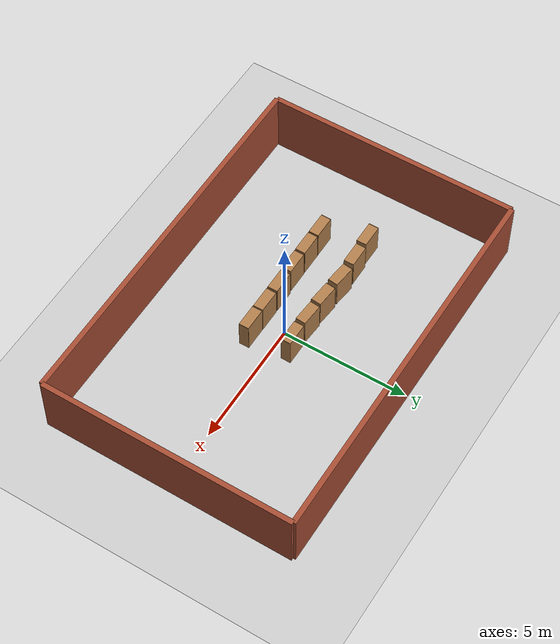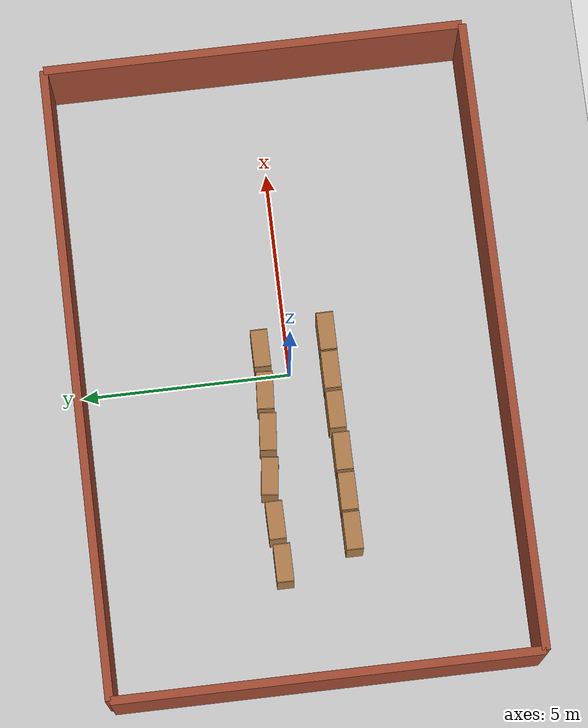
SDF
<sdf version="1.7">
 <world name="default">
  <light name="sun" type="directional">
   <pose>0 0 10 0 -0 0</pose>
   <diffuse>0.8 0.8 0.8 1</diffuse>
   <specular>0.2 0.2 0.2 1</specular>
   <attenuation>
    <range>1000</range>
    <constant>0.9</constant>
    <linear>0.01</linear>
    <quadratic>0.001</quadratic>
   </attenuation>
   <direction>-0.5 0.1 -0.9</direction>
   <spot><inner_angle>0</inner_angle><outer_angle>0</outer_angle><falloff>0</falloff></spot>
  </light>
  <model name="ground_plane">
   <static>1</static>
   <link name="link">
    <collision name="collision">
     <geometry><plane><normal>0 0 1</normal><size>100 100</size></plane></geometry>
     <surface><friction><ode><mu>100</mu><mu2>50</mu2></ode></friction></surface>
    </collision>
    <visual name="visual">
     <cast_shadows>0</cast_shadows>
     <geometry><plane><normal>0 0 1</normal><size>100 100</size></plane></geometry>
     <material>
      <script><uri>file://media/materials/scripts/gazebo.material</uri><name>Gazebo/Grey</name></script>
     </material>
    </visual>
   </link>
  </model>
  <model name="my_factory">
   <static>1</static>
   <link name="Wall_South">
    <pose>0 -5 0 0 -0 0</pose>
    <collision name="Wall_South_Collision">
     <geometry><box><size>15 0.2 2.5</size></box></geometry>
     <pose>0 0 1.25 0 -0 0</pose>
    </collision>
    <visual name="Wall_South_Visual">
     <geometry><box><size>15 0.2 2.5</size></box></geometry>
     <pose>0 0 1.25 0 -0 0</pose>
     <material>
      <script><uri>file://media/materials/scripts/gazebo.material</uri><name>Gazebo/Bricks</name></script>
     </material>
    </visual>
   </link>
   <link name="Wall_North">
    <pose>0 5 0 0 -0 0</pose>
    <collision name="Wall_North_Collision">
     <geometry><box><size>15 0.2 2.5</size></box></geometry>
     <pose>0 0 1.25 0 -0 0</pose>
    </collision>
    <visual name="Wall_North_Visual">
     <geometry><box><size>15 0.2 2.5</size></box></geometry>
     <pose>0 0 1.25 0 -0 0</pose>
     <material>
      <script><uri>file://media/materials/scripts/gazebo.material</uri><name>Gazebo/Bricks</name></script>
     </material>
    </visual>
   </link>
   <link name="Wall_West">
    <pose>-7.5 0 0 0 -0 1.5708</pose>
    <collision name="Wall_West_Collision">
     <geometry><box><size>10 0.2 2.5</size></box></geometry>
     <pose>0 0 1.25 0 -0 0</pose>
    </collision>
    <visual name="Wall_West_Visual">
     <geometry><box><size>10 0.2 2.5</size></box></geometry>
     <pose>0 0 1.25 0 -0 0</pose>
     <material>
      <script><uri>file://media/materials/scripts/gazebo.material</uri><name>Gazebo/Bricks</name></script>
     </material>
    </visual>
   </link>
   <link name="Wall_East">
    <pose>7.5 0 0 0 -0 1.5708</pose>
    <collision name="Wall_East_Collision">
     <geometry><box><size>10 0.2 2.5</size></box></geometry>
     <pose>0 0 1.25 0 -0 0</pose>
    </collision>
    <visual name="Wall_East_Visual">
     <geometry><box><size>10 0.2 2.5</size></box></geometry>
     <pose>0 0 1.25 0 -0 0</pose>
     <material>
      <script><uri>file://media/materials/scripts/gazebo.material</uri><name>Gazebo/Bricks</name></script>
     </material>
    </visual>
   </link>
  </model>
  <physics type="ode">
   <real_time_update_rate>1000</real_time_update_rate>
   <max_step_size>0.001</max_step_size>
   <real_time_factor>1</real_time_factor>
  </physics>
  <gravity>0 0 -9.8</gravity>
  <magnetic_field>6e-06 2.3e-05 -4.2e-05</magnetic_field>
  <atmosphere type="adiabatic"/>
  <scene><ambient>0.4 0.4 0.4 1</ambient><background>0.7 0.7 0.7 1</background><shadows>1</shadows></scene>
  <audio><device>default</device></audio>
  <spherical_coordinates>
   <surface_model>EARTH_WGS84</surface_model>
   <latitude_deg>0</latitude_deg>
   <longitude_deg>0</longitude_deg>
   <elevation>0</elevation>
   <heading_deg>0</heading_deg>
  </spherical_coordinates>
  <model name="bookshelf">
   <static>1</static>
   <link name="link">
    <inertial><mass>1</mass></inertial>
    <collision name="back">
     <pose>0 0.005 0.6 0 -0 0</pose>
     <geometry><box><size>0.9 0.01 1.2</size></box></geometry>
    </collision>
    <visual name="visual1">
     <pose>0 0.005 0.6 0 -0 0</pose>
     <geometry><box><size>0.9 0.01 1.2</size></box></geometry>
     <material>
      <script><uri>file://media/materials/scripts/gazebo.material</uri><name>Gazebo/Wood</name></script>
     </material>
    </visual>
    <collision name="left_side">
     <pose>0.45 -0.195 0.6 0 -0 0</pose>
     <geometry><box><size>0.02 0.4 1.2</size></box></geometry>
    </collision>
    <visual name="visual2">
     <pose>0.45 -0.195 0.6 0 -0 0</pose>
     <geometry><box><size>0.02 0.4 1.2</size></box></geometry>
     <material>
      <script><uri>file://media/materials/scripts/gazebo.material</uri><name>Gazebo/Wood</name></script>
     </material>
    </visual>
    <collision name="right_side">
     <pose>-0.45 -0.195 0.6 0 -0 0</pose>
     <geometry><box><size>0.02 0.4 1.2</size></box></geometry>
    </collision>
    <visual name="visual3">
     <pose>-0.45 -0.195 0.6 0 -0 0</pose>
     <geometry><box><size>0.02 0.4 1.2</size></box></geometry>
     <material>
      <script><uri>file://media/materials/scripts/gazebo.material</uri><name>Gazebo/Wood</name></script>
     </material>
    </visual>
    <collision name="bottom">
     <pose>0 -0.195 0.03 0 -0 0</pose>
     <geometry><box><size>0.88 0.4 0.06</size></box></geometry>
    </collision>
    <visual name="visual4">
     <pose>0 -0.195 0.03 0 -0 0</pose>
     <geometry><box><size>0.88 0.4 0.06</size></box></geometry>
     <material>
      <script><uri>file://media/materials/scripts/gazebo.material</uri><name>Gazebo/Wood</name></script>
     </material>
    </visual>
    <collision name="top">
     <pose>0 -0.195 1.19 0 -0 0</pose>
     <geometry><box><size>0.88 0.4 0.02</size></box></geometry>
    </collision>
    <visual name="visual5">
     <pose>0 -0.195 1.19 0 -0 0</pose>
     <geometry><box><size>0.88 0.4 0.02</size></box></geometry>
     <material>
      <script><uri>file://media/materials/scripts/gazebo.material</uri><name>Gazebo/Wood</name></script>
     </material>
    </visual>
    <collision name="low_shelf">
     <pose>0 -0.195 0.43 0 -0 0</pose>
     <geometry><box><size>0.88 0.4 0.02</size></box></geometry>
    </collision>
    <visual name="visual6">
     <pose>0 -0.195 0.43 0 -0 0</pose>
     <geometry><box><size>0.88 0.4 0.02</size></box></geometry>
     <material>
      <script><uri>file://media/materials/scripts/gazebo.material</uri><name>Gazebo/Wood</name></script>
     </material>
    </visual>
    <collision name="high_shelf">
     <pose>0 -0.195 0.8 0 -0 0</pose>
     <geometry><box><size>0.88 0.4 0.02</size></box></geometry>
    </collision>
    <visual name="visual7">
     <pose>0 -0.195 0.8 0 -0 0</pose>
     <geometry><box><size>0.88 0.4 0.02</size></box></geometry>
     <material>
      <script><uri>file://media/materials/scripts/gazebo.material</uri><name>Gazebo/Wood</name></script>
     </material>
    </visual>
   </link>
   <pose>-2.53982 0.964937 0 0 0 -0.11797</pose>
  </model>
  <model name="bookshelf_0">
   <static>1</static>
   <link name="link">
    <inertial><mass>1</mass></inertial>
    <collision name="back">
     <pose>0 0.005 0.6 0 -0 0</pose>
     <geometry><box><size>0.9 0.01 1.2</size></box></geometry>
    </collision>
    <visual name="visual1">
     <pose>0 0.005 0.6 0 -0 0</pose>
     <geometry><box><size>0.9 0.01 1.2</size></box></geometry>
     <material>
      <script><uri>file://media/materials/scripts/gazebo.material</uri><name>Gazebo/Wood</name></script>
     </material>
    </visual>
    <collision name="left_side">
     <pose>0.45 -0.195 0.6 0 -0 0</pose>
     <geometry><box><size>0.02 0.4 1.2</size></box></geometry>
    </collision>
    <visual name="visual2">
     <pose>0.45 -0.195 0.6 0 -0 0</pose>
     <geometry><box><size>0.02 0.4 1.2</size></box></geometry>
     <material>
      <script><uri>file://media/materials/scripts/gazebo.material</uri><name>Gazebo/Wood</name></script>
     </material>
    </visual>
    <collision name="right_side">
     <pose>-0.45 -0.195 0.6 0 -0 0</pose>
     <geometry><box><size>0.02 0.4 1.2</size></box></geometry>
    </collision>
    <visual name="visual3">
     <pose>-0.45 -0.195 0.6 0 -0 0</pose>
     <geometry><box><size>0.02 0.4 1.2</size></box></geometry>
     <material>
      <script><uri>file://media/materials/scripts/gazebo.material</uri><name>Gazebo/Wood</name></script>
     </material>
    </visual>
    <collision name="bottom">
     <pose>0 -0.195 0.03 0 -0 0</pose>
     <geometry><box><size>0.88 0.4 0.06</size></box></geometry>
    </collision>
    <visual name="visual4">
     <pose>0 -0.195 0.03 0 -0 0</pose>
     <geometry><box><size>0.88 0.4 0.06</size></box></geometry>
     <material>
      <script><uri>file://media/materials/scripts/gazebo.material</uri><name>Gazebo/Wood</name></script>
     </material>
    </visual>
    <collision name="top">
     <pose>0 -0.195 1.19 0 -0 0</pose>
     <geometry><box><size>0.88 0.4 0.02</size></box></geometry>
    </collision>
    <visual name="visual5">
     <pose>0 -0.195 1.19 0 -0 0</pose>
     <geometry><box><size>0.88 0.4 0.02</size></box></geometry>
     <material>
      <script><uri>file://media/materials/scripts/gazebo.material</uri><name>Gazebo/Wood</name></script>
     </material>
    </visual>
    <collision name="low_shelf">
     <pose>0 -0.195 0.43 0 -0 0</pose>
     <geometry><box><size>0.88 0.4 0.02</size></box></geometry>
    </collision>
    <visual name="visual6">
     <pose>0 -0.195 0.43 0 -0 0</pose>
     <geometry><box><size>0.88 0.4 0.02</size></box></geometry>
     <material>
      <script><uri>file://media/materials/scripts/gazebo.material</uri><name>Gazebo/Wood</name></script>
     </material>
    </visual>
    <collision name="high_shelf">
     <pose>0 -0.195 0.8 0 -0 0</pose>
     <geometry><box><size>0.88 0.4 0.02</size></box></geometry>
    </collision>
    <visual name="visual7">
     <pose>0 -0.195 0.8 0 -0 0</pose>
     <geometry><box><size>0.88 0.4 0.02</size></box></geometry>
     <material>
      <script><uri>file://media/materials/scripts/gazebo.material</uri><name>Gazebo/Wood</name></script>
     </material>
    </visual>
   </link>
   <pose>-0.498648 0.845447 0 0 0 -0.070534</pose>
  </model>
  <model name="bookshelf_1">
   <static>1</static>
   <link name="link">
    <inertial><mass>1</mass></inertial>
    <collision name="back">
     <pose>0 0.005 0.6 0 -0 0</pose>
     <geometry><box><size>0.9 0.01 1.2</size></box></geometry>
    </collision>
    <visual name="visual1">
     <pose>0 0.005 0.6 0 -0 0</pose>
     <geometry><box><size>0.9 0.01 1.2</size></box></geometry>
     <material>
      <script><uri>file://media/materials/scripts/gazebo.material</uri><name>Gazebo/Wood</name></script>
     </material>
    </visual>
    <collision name="left_side">
     <pose>0.45 -0.195 0.6 0 -0 0</pose>
     <geometry><box><size>0.02 0.4 1.2</size></box></geometry>
    </collision>
    <visual name="visual2">
     <pose>0.45 -0.195 0.6 0 -0 0</pose>
     <geometry><box><size>0.02 0.4 1.2</size></box></geometry>
     <material>
      <script><uri>file://media/materials/scripts/gazebo.material</uri><name>Gazebo/Wood</name></script>
     </material>
    </visual>
    <collision name="right_side">
     <pose>-0.45 -0.195 0.6 0 -0 0</pose>
     <geometry><box><size>0.02 0.4 1.2</size></box></geometry>
    </collision>
    <visual name="visual3">
     <pose>-0.45 -0.195 0.6 0 -0 0</pose>
     <geometry><box><size>0.02 0.4 1.2</size></box></geometry>
     <material>
      <script><uri>file://media/materials/scripts/gazebo.material</uri><name>Gazebo/Wood</name></script>
     </material>
    </visual>
    <collision name="bottom">
     <pose>0 -0.195 0.03 0 -0 0</pose>
     <geometry><box><size>0.88 0.4 0.06</size></box></geometry>
    </collision>
    <visual name="visual4">
     <pose>0 -0.195 0.03 0 -0 0</pose>
     <geometry><box><size>0.88 0.4 0.06</size></box></geometry>
     <material>
      <script><uri>file://media/materials/scripts/gazebo.material</uri><name>Gazebo/Wood</name></script>
     </material>
    </visual>
    <collision name="top">
     <pose>0 -0.195 1.19 0 -0 0</pose>
     <geometry><box><size>0.88 0.4 0.02</size></box></geometry>
    </collision>
    <visual name="visual5">
     <pose>0 -0.195 1.19 0 -0 0</pose>
     <geometry><box><size>0.88 0.4 0.02</size></box></geometry>
     <material>
      <script><uri>file://media/materials/scripts/gazebo.material</uri><name>Gazebo/Wood</name></script>
     </material>
    </visual>
    <collision name="low_shelf">
     <pose>0 -0.195 0.43 0 -0 0</pose>
     <geometry><box><size>0.88 0.4 0.02</size></box></geometry>
    </collision>
    <visual name="visual6">
     <pose>0 -0.195 0.43 0 -0 0</pose>
     <geometry><box><size>0.88 0.4 0.02</size></box></geometry>
     <material>
      <script><uri>file://media/materials/scripts/gazebo.material</uri><name>Gazebo/Wood</name></script>
     </material>
    </visual>
    <collision name="high_shelf">
     <pose>0 -0.195 0.8 0 -0 0</pose>
     <geometry><box><size>0.88 0.4 0.02</size></box></geometry>
    </collision>
    <visual name="visual7">
     <pose>0 -0.195 0.8 0 -0 0</pose>
     <geometry><box><size>0.88 0.4 0.02</size></box></geometry>
     <material>
      <script><uri>file://media/materials/scripts/gazebo.material</uri><name>Gazebo/Wood</name></script>
     </material>
    </visual>
   </link>
   <pose>-3.62244 0.951396 0 0 -0 0.008786</pose>
  </model>
  <model name="bookshelf_2">
   <static>1</static>
   <link name="link">
    <inertial><mass>1</mass></inertial>
    <collision name="back">
     <pose>0 0.005 0.6 0 -0 0</pose>
     <geometry><box><size>0.9 0.01 1.2</size></box></geometry>
    </collision>
    <visual name="visual1">
     <pose>0 0.005 0.6 0 -0 0</pose>
     <geometry><box><size>0.9 0.01 1.2</size></box></geometry>
     <material>
      <script><uri>file://media/materials/scripts/gazebo.material</uri><name>Gazebo/Wood</name></script>
     </material>
    </visual>
    <collision name="left_side">
     <pose>0.45 -0.195 0.6 0 -0 0</pose>
     <geometry><box><size>0.02 0.4 1.2</size></box></geometry>
    </collision>
    <visual name="visual2">
     <pose>0.45 -0.195 0.6 0 -0 0</pose>
     <geometry><box><size>0.02 0.4 1.2</size></box></geometry>
     <material>
      <script><uri>file://media/materials/scripts/gazebo.material</uri><name>Gazebo/Wood</name></script>
     </material>
    </visual>
    <collision name="right_side">
     <pose>-0.45 -0.195 0.6 0 -0 0</pose>
     <geometry><box><size>0.02 0.4 1.2</size></box></geometry>
    </collision>
    <visual name="visual3">
     <pose>-0.45 -0.195 0.6 0 -0 0</pose>
     <geometry><box><size>0.02 0.4 1.2</size></box></geometry>
     <material>
      <script><uri>file://media/materials/scripts/gazebo.material</uri><name>Gazebo/Wood</name></script>
     </material>
    </visual>
    <collision name="bottom">
     <pose>0 -0.195 0.03 0 -0 0</pose>
     <geometry><box><size>0.88 0.4 0.06</size></box></geometry>
    </collision>
    <visual name="visual4">
     <pose>0 -0.195 0.03 0 -0 0</pose>
     <geometry><box><size>0.88 0.4 0.06</size></box></geometry>
     <material>
      <script><uri>file://media/materials/scripts/gazebo.material</uri><name>Gazebo/Wood</name></script>
     </material>
    </visual>
    <collision name="top">
     <pose>0 -0.195 1.19 0 -0 0</pose>
     <geometry><box><size>0.88 0.4 0.02</size></box></geometry>
    </collision>
    <visual name="visual5">
     <pose>0 -0.195 1.19 0 -0 0</pose>
     <geometry><box><size>0.88 0.4 0.02</size></box></geometry>
     <material>
      <script><uri>file://media/materials/scripts/gazebo.material</uri><name>Gazebo/Wood</name></script>
     </material>
    </visual>
    <collision name="low_shelf">
     <pose>0 -0.195 0.43 0 -0 0</pose>
     <geometry><box><size>0.88 0.4 0.02</size></box></geometry>
    </collision>
    <visual name="visual6">
     <pose>0 -0.195 0.43 0 -0 0</pose>
     <geometry><box><size>0.88 0.4 0.02</size></box></geometry>
     <material>
      <script><uri>file://media/materials/scripts/gazebo.material</uri><name>Gazebo/Wood</name></script>
     </material>
    </visual>
    <collision name="high_shelf">
     <pose>0 -0.195 0.8 0 -0 0</pose>
     <geometry><box><size>0.88 0.4 0.02</size></box></geometry>
    </collision>
    <visual name="visual7">
     <pose>0 -0.195 0.8 0 -0 0</pose>
     <geometry><box><size>0.88 0.4 0.02</size></box></geometry>
     <material>
      <script><uri>file://media/materials/scripts/gazebo.material</uri><name>Gazebo/Wood</name></script>
     </material>
    </visual>
   </link>
   <pose>-1.48709 0.88931 0 0 0 -0.09422</pose>
  </model>
  <model name="bookshelf_3">
   <static>1</static>
   <link name="link">
    <inertial><mass>1</mass></inertial>
    <collision name="back">
     <pose>0 0.005 0.6 0 -0 0</pose>
     <geometry><box><size>0.9 0.01 1.2</size></box></geometry>
    </collision>
    <visual name="visual1">
     <pose>0 0.005 0.6 0 -0 0</pose>
     <geometry><box><size>0.9 0.01 1.2</size></box></geometry>
     <material>
      <script><uri>file://media/materials/scripts/gazebo.material</uri><name>Gazebo/Wood</name></script>
     </material>
    </visual>
    <collision name="left_side">
     <pose>0.45 -0.195 0.6 0 -0 0</pose>
     <geometry><box><size>0.02 0.4 1.2</size></box></geometry>
    </collision>
    <visual name="visual2">
     <pose>0.45 -0.195 0.6 0 -0 0</pose>
     <geometry><box><size>0.02 0.4 1.2</size></box></geometry>
     <material>
      <script><uri>file://media/materials/scripts/gazebo.material</uri><name>Gazebo/Wood</name></script>
     </material>
    </visual>
    <collision name="right_side">
     <pose>-0.45 -0.195 0.6 0 -0 0</pose>
     <geometry><box><size>0.02 0.4 1.2</size></box></geometry>
    </collision>
    <visual name="visual3">
     <pose>-0.45 -0.195 0.6 0 -0 0</pose>
     <geometry><box><size>0.02 0.4 1.2</size></box></geometry>
     <material>
      <script><uri>file://media/materials/scripts/gazebo.material</uri><name>Gazebo/Wood</name></script>
     </material>
    </visual>
    <collision name="bottom">
     <pose>0 -0.195 0.03 0 -0 0</pose>
     <geometry><box><size>0.88 0.4 0.06</size></box></geometry>
    </collision>
    <visual name="visual4">
     <pose>0 -0.195 0.03 0 -0 0</pose>
     <geometry><box><size>0.88 0.4 0.06</size></box></geometry>
     <material>
      <script><uri>file://media/materials/scripts/gazebo.material</uri><name>Gazebo/Wood</name></script>
     </material>
    </visual>
    <collision name="top">
     <pose>0 -0.195 1.19 0 -0 0</pose>
     <geometry><box><size>0.88 0.4 0.02</size></box></geometry>
    </collision>
    <visual name="visual5">
     <pose>0 -0.195 1.19 0 -0 0</pose>
     <geometry><box><size>0.88 0.4 0.02</size></box></geometry>
     <material>
      <script><uri>file://media/materials/scripts/gazebo.material</uri><name>Gazebo/Wood</name></script>
     </material>
    </visual>
    <collision name="low_shelf">
     <pose>0 -0.195 0.43 0 -0 0</pose>
     <geometry><box><size>0.88 0.4 0.02</size></box></geometry>
    </collision>
    <visual name="visual6">
     <pose>0 -0.195 0.43 0 -0 0</pose>
     <geometry><box><size>0.88 0.4 0.02</size></box></geometry>
     <material>
      <script><uri>file://media/materials/scripts/gazebo.material</uri><name>Gazebo/Wood</name></script>
     </material>
    </visual>
    <collision name="high_shelf">
     <pose>0 -0.195 0.8 0 -0 0</pose>
     <geometry><box><size>0.88 0.4 0.02</size></box></geometry>
    </collision>
    <visual name="visual7">
     <pose>0 -0.195 0.8 0 -0 0</pose>
     <geometry><box><size>0.88 0.4 0.02</size></box></geometry>
     <material>
      <script><uri>file://media/materials/scripts/gazebo.material</uri><name>Gazebo/Wood</name></script>
     </material>
    </visual>
   </link>
   <pose>0.505249 0.833144 0 0 -0 0</pose>
  </model>
  <model name="bookshelf_4">
   <static>1</static>
   <link name="link">
    <inertial><mass>1</mass></inertial>
    <collision name="back">
     <pose>0 0.005 0.6 0 -0 0</pose>
     <geometry><box><size>0.9 0.01 1.2</size></box></geometry>
    </collision>
    <visual name="visual1">
     <pose>0 0.005 0.6 0 -0 0</pose>
     <geometry><box><size>0.9 0.01 1.2</size></box></geometry>
     <material>
      <script><uri>file://media/materials/scripts/gazebo.material</uri><name>Gazebo/Wood</name></script>
     </material>
    </visual>
    <collision name="left_side">
     <pose>0.45 -0.195 0.6 0 -0 0</pose>
     <geometry><box><size>0.02 0.4 1.2</size></box></geometry>
    </collision>
    <visual name="visual2">
     <pose>0.45 -0.195 0.6 0 -0 0</pose>
     <geometry><box><size>0.02 0.4 1.2</size></box></geometry>
     <material>
      <script><uri>file://media/materials/scripts/gazebo.material</uri><name>Gazebo/Wood</name></script>
     </material>
    </visual>
    <collision name="right_side">
     <pose>-0.45 -0.195 0.6 0 -0 0</pose>
     <geometry><box><size>0.02 0.4 1.2</size></box></geometry>
    </collision>
    <visual name="visual3">
     <pose>-0.45 -0.195 0.6 0 -0 0</pose>
     <geometry><box><size>0.02 0.4 1.2</size></box></geometry>
     <material>
      <script><uri>file://media/materials/scripts/gazebo.material</uri><name>Gazebo/Wood</name></script>
     </material>
    </visual>
    <collision name="bottom">
     <pose>0 -0.195 0.03 0 -0 0</pose>
     <geometry><box><size>0.88 0.4 0.06</size></box></geometry>
    </collision>
    <visual name="visual4">
     <pose>0 -0.195 0.03 0 -0 0</pose>
     <geometry><box><size>0.88 0.4 0.06</size></box></geometry>
     <material>
      <script><uri>file://media/materials/scripts/gazebo.material</uri><name>Gazebo/Wood</name></script>
     </material>
    </visual>
    <collision name="top">
     <pose>0 -0.195 1.19 0 -0 0</pose>
     <geometry><box><size>0.88 0.4 0.02</size></box></geometry>
    </collision>
    <visual name="visual5">
     <pose>0 -0.195 1.19 0 -0 0</pose>
     <geometry><box><size>0.88 0.4 0.02</size></box></geometry>
     <material>
      <script><uri>file://media/materials/scripts/gazebo.material</uri><name>Gazebo/Wood</name></script>
     </material>
    </visual>
    <collision name="low_shelf">
     <pose>0 -0.195 0.43 0 -0 0</pose>
     <geometry><box><size>0.88 0.4 0.02</size></box></geometry>
    </collision>
    <visual name="visual6">
     <pose>0 -0.195 0.43 0 -0 0</pose>
     <geometry><box><size>0.88 0.4 0.02</size></box></geometry>
     <material>
      <script><uri>file://media/materials/scripts/gazebo.material</uri><name>Gazebo/Wood</name></script>
     </material>
    </visual>
    <collision name="high_shelf">
     <pose>0 -0.195 0.8 0 -0 0</pose>
     <geometry><box><size>0.88 0.4 0.02</size></box></geometry>
    </collision>
    <visual name="visual7">
     <pose>0 -0.195 0.8 0 -0 0</pose>
     <geometry><box><size>0.88 0.4 0.02</size></box></geometry>
     <material>
      <script><uri>file://media/materials/scripts/gazebo.material</uri><name>Gazebo/Wood</name></script>
     </material>
    </visual>
   </link>
   <pose>-4.07062 -0.814468 0 0 -0 0</pose>
  </model>
  <model name="bookshelf_5">
   <static>1</static>
   <link name="link">
    <inertial><mass>1</mass></inertial>
    <collision name="back">
     <pose>0 0.005 0.6 0 -0 0</pose>
     <geometry><box><size>0.9 0.01 1.2</size></box></geometry>
    </collision>
    <visual name="visual1">
     <pose>0 0.005 0.6 0 -0 0</pose>
     <geometry><box><size>0.9 0.01 1.2</size></box></geometry>
     <material>
      <script><uri>file://media/materials/scripts/gazebo.material</uri><name>Gazebo/Wood</name></script>
     </material>
    </visual>
    <collision name="left_side">
     <pose>0.45 -0.195 0.6 0 -0 0</pose>
     <geometry><box><size>0.02 0.4 1.2</size></box></geometry>
    </collision>
    <visual name="visual2">
     <pose>0.45 -0.195 0.6 0 -0 0</pose>
     <geometry><box><size>0.02 0.4 1.2</size></box></geometry>
     <material>
      <script><uri>file://media/materials/scripts/gazebo.material</uri><name>Gazebo/Wood</name></script>
     </material>
    </visual>
    <collision name="right_side">
     <pose>-0.45 -0.195 0.6 0 -0 0</pose>
     <geometry><box><size>0.02 0.4 1.2</size></box></geometry>
    </collision>
    <visual name="visual3">
     <pose>-0.45 -0.195 0.6 0 -0 0</pose>
     <geometry><box><size>0.02 0.4 1.2</size></box></geometry>
     <material>
      <script><uri>file://media/materials/scripts/gazebo.material</uri><name>Gazebo/Wood</name></script>
     </material>
    </visual>
    <collision name="bottom">
     <pose>0 -0.195 0.03 0 -0 0</pose>
     <geometry><box><size>0.88 0.4 0.06</size></box></geometry>
    </collision>
    <visual name="visual4">
     <pose>0 -0.195 0.03 0 -0 0</pose>
     <geometry><box><size>0.88 0.4 0.06</size></box></geometry>
     <material>
      <script><uri>file://media/materials/scripts/gazebo.material</uri><name>Gazebo/Wood</name></script>
     </material>
    </visual>
    <collision name="top">
     <pose>0 -0.195 1.19 0 -0 0</pose>
     <geometry><box><size>0.88 0.4 0.02</size></box></geometry>
    </collision>
    <visual name="visual5">
     <pose>0 -0.195 1.19 0 -0 0</pose>
     <geometry><box><size>0.88 0.4 0.02</size></box></geometry>
     <material>
      <script><uri>file://media/materials/scripts/gazebo.material</uri><name>Gazebo/Wood</name></script>
     </material>
    </visual>
    <collision name="low_shelf">
     <pose>0 -0.195 0.43 0 -0 0</pose>
     <geometry><box><size>0.88 0.4 0.02</size></box></geometry>
    </collision>
    <visual name="visual6">
     <pose>0 -0.195 0.43 0 -0 0</pose>
     <geometry><box><size>0.88 0.4 0.02</size></box></geometry>
     <material>
      <script><uri>file://media/materials/scripts/gazebo.material</uri><name>Gazebo/Wood</name></script>
     </material>
    </visual>
    <collision name="high_shelf">
     <pose>0 -0.195 0.8 0 -0 0</pose>
     <geometry><box><size>0.88 0.4 0.02</size></box></geometry>
    </collision>
    <visual name="visual7">
     <pose>0 -0.195 0.8 0 -0 0</pose>
     <geometry><box><size>0.88 0.4 0.02</size></box></geometry>
     <material>
      <script><uri>file://media/materials/scripts/gazebo.material</uri><name>Gazebo/Wood</name></script>
     </material>
    </visual>
   </link>
   <pose>-3.1258 -0.811318 0 0 -0 0</pose>
  </model>
  <model name="bookshelf_6">
   <static>1</static>
   <link name="link">
    <inertial><mass>1</mass></inertial>
    <collision name="back">
     <pose>0 0.005 0.6 0 -0 0</pose>
     <geometry><box><size>0.9 0.01 1.2</size></box></geometry>
    </collision>
    <visual name="visual1">
     <pose>0 0.005 0.6 0 -0 0</pose>
     <geometry><box><size>0.9 0.01 1.2</size></box></geometry>
     <material>
      <script><uri>file://media/materials/scripts/gazebo.material</uri><name>Gazebo/Wood</name></script>
     </material>
    </visual>
    <collision name="left_side">
     <pose>0.45 -0.195 0.6 0 -0 0</pose>
     <geometry><box><size>0.02 0.4 1.2</size></box></geometry>
    </collision>
    <visual name="visual2">
     <pose>0.45 -0.195 0.6 0 -0 0</pose>
     <geometry><box><size>0.02 0.4 1.2</size></box></geometry>
     <material>
      <script><uri>file://media/materials/scripts/gazebo.material</uri><name>Gazebo/Wood</name></script>
     </material>
    </visual>
    <collision name="right_side">
     <pose>-0.45 -0.195 0.6 0 -0 0</pose>
     <geometry><box><size>0.02 0.4 1.2</size></box></geometry>
    </collision>
    <visual name="visual3">
     <pose>-0.45 -0.195 0.6 0 -0 0</pose>
     <geometry><box><size>0.02 0.4 1.2</size></box></geometry>
     <material>
      <script><uri>file://media/materials/scripts/gazebo.material</uri><name>Gazebo/Wood</name></script>
     </material>
    </visual>
    <collision name="bottom">
     <pose>0 -0.195 0.03 0 -0 0</pose>
     <geometry><box><size>0.88 0.4 0.06</size></box></geometry>
    </collision>
    <visual name="visual4">
     <pose>0 -0.195 0.03 0 -0 0</pose>
     <geometry><box><size>0.88 0.4 0.06</size></box></geometry>
     <material>
      <script><uri>file://media/materials/scripts/gazebo.material</uri><name>Gazebo/Wood</name></script>
     </material>
    </visual>
    <collision name="top">
     <pose>0 -0.195 1.19 0 -0 0</pose>
     <geometry><box><size>0.88 0.4 0.02</size></box></geometry>
    </collision>
    <visual name="visual5">
     <pose>0 -0.195 1.19 0 -0 0</pose>
     <geometry><box><size>0.88 0.4 0.02</size></box></geometry>
     <material>
      <script><uri>file://media/materials/scripts/gazebo.material</uri><name>Gazebo/Wood</name></script>
     </material>
    </visual>
    <collision name="low_shelf">
     <pose>0 -0.195 0.43 0 -0 0</pose>
     <geometry><box><size>0.88 0.4 0.02</size></box></geometry>
    </collision>
    <visual name="visual6">
     <pose>0 -0.195 0.43 0 -0 0</pose>
     <geometry><box><size>0.88 0.4 0.02</size></box></geometry>
     <material>
      <script><uri>file://media/materials/scripts/gazebo.material</uri><name>Gazebo/Wood</name></script>
     </material>
    </visual>
    <collision name="high_shelf">
     <pose>0 -0.195 0.8 0 -0 0</pose>
     <geometry><box><size>0.88 0.4 0.02</size></box></geometry>
    </collision>
    <visual name="visual7">
     <pose>0 -0.195 0.8 0 -0 0</pose>
     <geometry><box><size>0.88 0.4 0.02</size></box></geometry>
     <material>
      <script><uri>file://media/materials/scripts/gazebo.material</uri><name>Gazebo/Wood</name></script>
     </material>
    </visual>
   </link>
   <pose>-2.16497 -0.805725 0 0 -0 0</pose>
  </model>
  <model name="bookshelf_7">
   <static>1</static>
   <link name="link">
    <inertial><mass>1</mass></inertial>
    <collision name="back">
     <pose>0 0.005 0.6 0 -0 0</pose>
     <geometry><box><size>0.9 0.01 1.2</size></box></geometry>
    </collision>
    <visual name="visual1">
     <pose>0 0.005 0.6 0 -0 0</pose>
     <geometry><box><size>0.9 0.01 1.2</size></box></geometry>
     <material>
      <script><uri>file://media/materials/scripts/gazebo.material</uri><name>Gazebo/Wood</name></script>
     </material>
    </visual>
    <collision name="left_side">
     <pose>0.45 -0.195 0.6 0 -0 0</pose>
     <geometry><box><size>0.02 0.4 1.2</size></box></geometry>
    </collision>
    <visual name="visual2">
     <pose>0.45 -0.195 0.6 0 -0 0</pose>
     <geometry><box><size>0.02 0.4 1.2</size></box></geometry>
     <material>
      <script><uri>file://media/materials/scripts/gazebo.material</uri><name>Gazebo/Wood</name></script>
     </material>
    </visual>
    <collision name="right_side">
     <pose>-0.45 -0.195 0.6 0 -0 0</pose>
     <geometry><box><size>0.02 0.4 1.2</size></box></geometry>
    </collision>
    <visual name="visual3">
     <pose>-0.45 -0.195 0.6 0 -0 0</pose>
     <geometry><box><size>0.02 0.4 1.2</size></box></geometry>
     <material>
      <script><uri>file://media/materials/scripts/gazebo.material</uri><name>Gazebo/Wood</name></script>
     </material>
    </visual>
    <collision name="bottom">
     <pose>0 -0.195 0.03 0 -0 0</pose>
     <geometry><box><size>0.88 0.4 0.06</size></box></geometry>
    </collision>
    <visual name="visual4">
     <pose>0 -0.195 0.03 0 -0 0</pose>
     <geometry><box><size>0.88 0.4 0.06</size></box></geometry>
     <material>
      <script><uri>file://media/materials/scripts/gazebo.material</uri><name>Gazebo/Wood</name></script>
     </material>
    </visual>
    <collision name="top">
     <pose>0 -0.195 1.19 0 -0 0</pose>
     <geometry><box><size>0.88 0.4 0.02</size></box></geometry>
    </collision>
    <visual name="visual5">
     <pose>0 -0.195 1.19 0 -0 0</pose>
     <geometry><box><size>0.88 0.4 0.02</size></box></geometry>
     <material>
      <script><uri>file://media/materials/scripts/gazebo.material</uri><name>Gazebo/Wood</name></script>
     </material>
    </visual>
    <collision name="low_shelf">
     <pose>0 -0.195 0.43 0 -0 0</pose>
     <geometry><box><size>0.88 0.4 0.02</size></box></geometry>
    </collision>
    <visual name="visual6">
     <pose>0 -0.195 0.43 0 -0 0</pose>
     <geometry><box><size>0.88 0.4 0.02</size></box></geometry>
     <material>
      <script><uri>file://media/materials/scripts/gazebo.material</uri><name>Gazebo/Wood</name></script>
     </material>
    </visual>
    <collision name="high_shelf">
     <pose>0 -0.195 0.8 0 -0 0</pose>
     <geometry><box><size>0.88 0.4 0.02</size></box></geometry>
    </collision>
    <visual name="visual7">
     <pose>0 -0.195 0.8 0 -0 0</pose>
     <geometry><box><size>0.88 0.4 0.02</size></box></geometry>
     <material>
      <script><uri>file://media/materials/scripts/gazebo.material</uri><name>Gazebo/Wood</name></script>
     </material>
    </visual>
   </link>
   <pose>-1.16025 -0.765621 0 0 -0 0</pose>
  </model>
  <model name="bookshelf_8">
   <static>1</static>
   <link name="link">
    <inertial><mass>1</mass></inertial>
    <collision name="back">
     <pose>0 0.005 0.6 0 -0 0</pose>
     <geometry><box><size>0.9 0.01 1.2</size></box></geometry>
    </collision>
    <visual name="visual1">
     <pose>0 0.005 0.6 0 -0 0</pose>
     <geometry><box><size>0.9 0.01 1.2</size></box></geometry>
     <material>
      <script><uri>file://media/materials/scripts/gazebo.material</uri><name>Gazebo/Wood</name></script>
     </material>
    </visual>
    <collision name="left_side">
     <pose>0.45 -0.195 0.6 0 -0 0</pose>
     <geometry><box><size>0.02 0.4 1.2</size></box></geometry>
    </collision>
    <visual name="visual2">
     <pose>0.45 -0.195 0.6 0 -0 0</pose>
     <geometry><box><size>0.02 0.4 1.2</size></box></geometry>
     <material>
      <script><uri>file://media/materials/scripts/gazebo.material</uri><name>Gazebo/Wood</name></script>
     </material>
    </visual>
    <collision name="right_side">
     <pose>-0.45 -0.195 0.6 0 -0 0</pose>
     <geometry><box><size>0.02 0.4 1.2</size></box></geometry>
    </collision>
    <visual name="visual3">
     <pose>-0.45 -0.195 0.6 0 -0 0</pose>
     <geometry><box><size>0.02 0.4 1.2</size></box></geometry>
     <material>
      <script><uri>file://media/materials/scripts/gazebo.material</uri><name>Gazebo/Wood</name></script>
     </material>
    </visual>
    <collision name="bottom">
     <pose>0 -0.195 0.03 0 -0 0</pose>
     <geometry><box><size>0.88 0.4 0.06</size></box></geometry>
    </collision>
    <visual name="visual4">
     <pose>0 -0.195 0.03 0 -0 0</pose>
     <geometry><box><size>0.88 0.4 0.06</size></box></geometry>
     <material>
      <script><uri>file://media/materials/scripts/gazebo.material</uri><name>Gazebo/Wood</name></script>
     </material>
    </visual>
    <collision name="top">
     <pose>0 -0.195 1.19 0 -0 0</pose>
     <geometry><box><size>0.88 0.4 0.02</size></box></geometry>
    </collision>
    <visual name="visual5">
     <pose>0 -0.195 1.19 0 -0 0</pose>
     <geometry><box><size>0.88 0.4 0.02</size></box></geometry>
     <material>
      <script><uri>file://media/materials/scripts/gazebo.material</uri><name>Gazebo/Wood</name></script>
     </material>
    </visual>
    <collision name="low_shelf">
     <pose>0 -0.195 0.43 0 -0 0</pose>
     <geometry><box><size>0.88 0.4 0.02</size></box></geometry>
    </collision>
    <visual name="visual6">
     <pose>0 -0.195 0.43 0 -0 0</pose>
     <geometry><box><size>0.88 0.4 0.02</size></box></geometry>
     <material>
      <script><uri>file://media/materials/scripts/gazebo.material</uri><name>Gazebo/Wood</name></script>
     </material>
    </visual>
    <collision name="high_shelf">
     <pose>0 -0.195 0.8 0 -0 0</pose>
     <geometry><box><size>0.88 0.4 0.02</size></box></geometry>
    </collision>
    <visual name="visual7">
     <pose>0 -0.195 0.8 0 -0 0</pose>
     <geometry><box><size>0.88 0.4 0.02</size></box></geometry>
     <material>
      <script><uri>file://media/materials/scripts/gazebo.material</uri><name>Gazebo/Wood</name></script>
     </material>
    </visual>
   </link>
   <pose>-0.190671 -0.76398 0 0 -0 0</pose>
  </model>
  <model name="bookshelf_9">
   <static>1</static>
   <link name="link">
    <inertial><mass>1</mass></inertial>
    <collision name="back">
     <pose>0 0.005 0.6 0 -0 0</pose>
     <geometry><box><size>0.9 0.01 1.2</size></box></geometry>
    </collision>
    <visual name="visual1">
     <pose>0 0.005 0.6 0 -0 0</pose>
     <geometry><box><size>0.9 0.01 1.2</size></box></geometry>
     <material>
      <script><uri>file://media/materials/scripts/gazebo.material</uri><name>Gazebo/Wood</name></script>
     </material>
    </visual>
    <collision name="left_side">
     <pose>0.45 -0.195 0.6 0 -0 0</pose>
     <geometry><box><size>0.02 0.4 1.2</size></box></geometry>
    </collision>
    <visual name="visual2">
     <pose>0.45 -0.195 0.6 0 -0 0</pose>
     <geometry><box><size>0.02 0.4 1.2</size></box></geometry>
     <material>
      <script><uri>file://media/materials/scripts/gazebo.material</uri><name>Gazebo/Wood</name></script>
     </material>
    </visual>
    <collision name="right_side">
     <pose>-0.45 -0.195 0.6 0 -0 0</pose>
     <geometry><box><size>0.02 0.4 1.2</size></box></geometry>
    </collision>
    <visual name="visual3">
     <pose>-0.45 -0.195 0.6 0 -0 0</pose>
     <geometry><box><size>0.02 0.4 1.2</size></box></geometry>
     <material>
      <script><uri>file://media/materials/scripts/gazebo.material</uri><name>Gazebo/Wood</name></script>
     </material>
    </visual>
    <collision name="bottom">
     <pose>0 -0.195 0.03 0 -0 0</pose>
     <geometry><box><size>0.88 0.4 0.06</size></box></geometry>
    </collision>
    <visual name="visual4">
     <pose>0 -0.195 0.03 0 -0 0</pose>
     <geometry><box><size>0.88 0.4 0.06</size></box></geometry>
     <material>
      <script><uri>file://media/materials/scripts/gazebo.material</uri><name>Gazebo/Wood</name></script>
     </material>
    </visual>
    <collision name="top">
     <pose>0 -0.195 1.19 0 -0 0</pose>
     <geometry><box><size>0.88 0.4 0.02</size></box></geometry>
    </collision>
    <visual name="visual5">
     <pose>0 -0.195 1.19 0 -0 0</pose>
     <geometry><box><size>0.88 0.4 0.02</size></box></geometry>
     <material>
      <script><uri>file://media/materials/scripts/gazebo.material</uri><name>Gazebo/Wood</name></script>
     </material>
    </visual>
    <collision name="low_shelf">
     <pose>0 -0.195 0.43 0 -0 0</pose>
     <geometry><box><size>0.88 0.4 0.02</size></box></geometry>
    </collision>
    <visual name="visual6">
     <pose>0 -0.195 0.43 0 -0 0</pose>
     <geometry><box><size>0.88 0.4 0.02</size></box></geometry>
     <material>
      <script><uri>file://media/materials/scripts/gazebo.material</uri><name>Gazebo/Wood</name></script>
     </material>
    </visual>
    <collision name="high_shelf">
     <pose>0 -0.195 0.8 0 -0 0</pose>
     <geometry><box><size>0.88 0.4 0.02</size></box></geometry>
    </collision>
    <visual name="visual7">
     <pose>0 -0.195 0.8 0 -0 0</pose>
     <geometry><box><size>0.88 0.4 0.02</size></box></geometry>
     <material>
      <script><uri>file://media/materials/scripts/gazebo.material</uri><name>Gazebo/Wood</name></script>
     </material>
    </visual>
   </link>
   <pose>0.744527 -0.769505 0 0 -0 0</pose>
  </model>
  <model name="bookshelf_10">
   <static>1</static>
   <link name="link">
    <inertial><mass>1</mass></inertial>
    <collision name="back">
     <pose>0 0.005 0.6 0 -0 0</pose>
     <geometry><box><size>0.9 0.01 1.2</size></box></geometry>
    </collision>
    <visual name="visual1">
     <pose>0 0.005 0.6 0 -0 0</pose>
     <geometry><box><size>0.9 0.01 1.2</size></box></geometry>
     <material>
      <script><uri>file://media/materials/scripts/gazebo.material</uri><name>Gazebo/Wood</name></script>
     </material>
    </visual>
    <collision name="left_side">
     <pose>0.45 -0.195 0.6 0 -0 0</pose>
     <geometry><box><size>0.02 0.4 1.2</size></box></geometry>
    </collision>
    <visual name="visual2">
     <pose>0.45 -0.195 0.6 0 -0 0</pose>
     <geometry><box><size>0.02 0.4 1.2</size></box></geometry>
     <material>
      <script><uri>file://media/materials/scripts/gazebo.material</uri><name>Gazebo/Wood</name></script>
     </material>
    </visual>
    <collision name="right_side">
     <pose>-0.45 -0.195 0.6 0 -0 0</pose>
     <geometry><box><size>0.02 0.4 1.2</size></box></geometry>
    </collision>
    <visual name="visual3">
     <pose>-0.45 -0.195 0.6 0 -0 0</pose>
     <geometry><box><size>0.02 0.4 1.2</size></box></geometry>
     <material>
      <script><uri>file://media/materials/scripts/gazebo.material</uri><name>Gazebo/Wood</name></script>
     </material>
    </visual>
    <collision name="bottom">
     <pose>0 -0.195 0.03 0 -0 0</pose>
     <geometry><box><size>0.88 0.4 0.06</size></box></geometry>
    </collision>
    <visual name="visual4">
     <pose>0 -0.195 0.03 0 -0 0</pose>
     <geometry><box><size>0.88 0.4 0.06</size></box></geometry>
     <material>
      <script><uri>file://media/materials/scripts/gazebo.material</uri><name>Gazebo/Wood</name></script>
     </material>
    </visual>
    <collision name="top">
     <pose>0 -0.195 1.19 0 -0 0</pose>
     <geometry><box><size>0.88 0.4 0.02</size></box></geometry>
    </collision>
    <visual name="visual5">
     <pose>0 -0.195 1.19 0 -0 0</pose>
     <geometry><box><size>0.88 0.4 0.02</size></box></geometry>
     <material>
      <script><uri>file://media/materials/scripts/gazebo.material</uri><name>Gazebo/Wood</name></script>
     </material>
    </visual>
    <collision name="low_shelf">
     <pose>0 -0.195 0.43 0 -0 0</pose>
     <geometry><box><size>0.88 0.4 0.02</size></box></geometry>
    </collision>
    <visual name="visual6">
     <pose>0 -0.195 0.43 0 -0 0</pose>
     <geometry><box><size>0.88 0.4 0.02</size></box></geometry>
     <material>
      <script><uri>file://media/materials/scripts/gazebo.material</uri><name>Gazebo/Wood</name></script>
     </material>
    </visual>
    <collision name="high_shelf">
     <pose>0 -0.195 0.8 0 -0 0</pose>
     <geometry><box><size>0.88 0.4 0.02</size></box></geometry>
    </collision>
    <visual name="visual7">
     <pose>0 -0.195 0.8 0 -0 0</pose>
     <geometry><box><size>0.88 0.4 0.02</size></box></geometry>
     <material>
      <script><uri>file://media/materials/scripts/gazebo.material</uri><name>Gazebo/Wood</name></script>
     </material>
    </visual>
   </link>
   <pose>-4.64227 0.886248 0 0 -0 0</pose>
  </model>
 </world>
</sdf>
